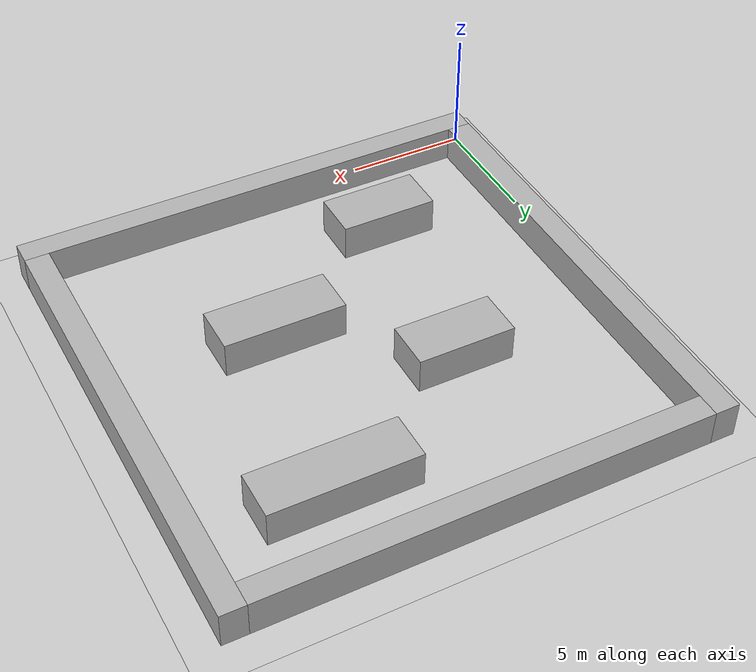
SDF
<?xml version="1.0" ?>
<sdf version="1.9">
  <world name="grid_world">
    <physics type="ode">
      <max_step_size>0.004</max_step_size>
      <real_time_factor>1.0</real_time_factor>
      <real_time_update_rate>250</real_time_update_rate>
    </physics>
    <gravity>0 0 -9.8</gravity>
    <magnetic_field>6e-06 2.3e-05 -4.2e-05</magnetic_field>
    <atmosphere type="adiabatic"/>
    <scene>
      <grid>false</grid>
      <ambient>0.4 0.4 0.4 1</ambient>
      <background>0.7 0.7 0.7 1</background>
      <shadows>true</shadows>
    </scene>
    <spherical_coordinates>
      <surface_model>EARTH_WGS84</surface_model>
      <world_frame_orientation>ENU</world_frame_orientation>
      <latitude_deg>47.397971057728974</latitude_deg>
      <longitude_deg>8.546163739800146</longitude_deg>
      <elevation>0</elevation>
    </spherical_coordinates>

    <!-- 光照 -->
    <light type="directional" name="sun">
      <cast_shadows>true</cast_shadows>
      <pose>0 0 10 0 0 0</pose>
      <diffuse>0.8 0.8 0.8 1</diffuse>
      <specular>0.2 0.2 0.2 1</specular>
      <direction>-0.5 0.1 -0.9</direction>
    </light>

    <!-- 地面 -->
    <model name="ground_plane">
      <static>true</static>
      <link name="link">
        <collision name="collision">
          <geometry>
            <plane><normal>0 0 1</normal><size>22.0 22.0</size></plane>
          </geometry>
        </collision>
        <visual name="visual">
          <geometry>
            <plane><normal>0 0 1</normal><size>22.0 22.0</size></plane>
          </geometry>
          <material>
            <ambient>0.8 0.8 0.8 1</ambient>
            <diffuse>0.8 0.8 0.8 1</diffuse>
          </material>
        </visual>
      </link>
    </model>

    <!-- 障碍物（从 occupancy grid 合并生成） -->
    <model name="wall_0">
      <static>true</static>
      <pose>10.0000 0.5000 0.7500 0 0 0</pose>
      <link name="link">
        <collision name="collision">
          <geometry><box><size>20.0000 1.0000 1.5000</size></box></geometry>
        </collision>
        <visual name="visual">
          <geometry><box><size>20.0000 1.0000 1.5000</size></box></geometry>
          <material><ambient>0.5 0.5 0.5 1</ambient><diffuse>0.7 0.7 0.7 1</diffuse></material>
        </visual>
      </link>
    </model>

    <model name="wall_1">
      <static>true</static>
      <pose>0.5000 10.5000 0.7500 0 0 0</pose>
      <link name="link">
        <collision name="collision">
          <geometry><box><size>1.0000 19.0000 1.5000</size></box></geometry>
        </collision>
        <visual name="visual">
          <geometry><box><size>1.0000 19.0000 1.5000</size></box></geometry>
          <material><ambient>0.5 0.5 0.5 1</ambient><diffuse>0.7 0.7 0.7 1</diffuse></material>
        </visual>
      </link>
    </model>

    <model name="wall_2">
      <static>true</static>
      <pose>19.5000 10.5000 0.7500 0 0 0</pose>
      <link name="link">
        <collision name="collision">
          <geometry><box><size>1.0000 19.0000 1.5000</size></box></geometry>
        </collision>
        <visual name="visual">
          <geometry><box><size>1.0000 19.0000 1.5000</size></box></geometry>
          <material><ambient>0.5 0.5 0.5 1</ambient><diffuse>0.7 0.7 0.7 1</diffuse></material>
        </visual>
      </link>
    </model>

    <model name="wall_3">
      <static>true</static>
      <pose>6.0000 4.0000 0.7500 0 0 0</pose>
      <link name="link">
        <collision name="collision">
          <geometry><box><size>4.0000 2.0000 1.5000</size></box></geometry>
        </collision>
        <visual name="visual">
          <geometry><box><size>4.0000 2.0000 1.5000</size></box></geometry>
          <material><ambient>0.5 0.5 0.5 1</ambient><diffuse>0.7 0.7 0.7 1</diffuse></material>
        </visual>
      </link>
    </model>

    <model name="wall_4">
      <static>true</static>
      <pose>12.5000 8.0000 0.7500 0 0 0</pose>
      <link name="link">
        <collision name="collision">
          <geometry><box><size>5.0000 2.0000 1.5000</size></box></geometry>
        </collision>
        <visual name="visual">
          <geometry><box><size>5.0000 2.0000 1.5000</size></box></geometry>
          <material><ambient>0.5 0.5 0.5 1</ambient><diffuse>0.7 0.7 0.7 1</diffuse></material>
        </visual>
      </link>
    </model>

    <model name="wall_5">
      <static>true</static>
      <pose>7.0000 12.0000 0.7500 0 0 0</pose>
      <link name="link">
        <collision name="collision">
          <geometry><box><size>4.0000 2.0000 1.5000</size></box></geometry>
        </collision>
        <visual name="visual">
          <geometry><box><size>4.0000 2.0000 1.5000</size></box></geometry>
          <material><ambient>0.5 0.5 0.5 1</ambient><diffuse>0.7 0.7 0.7 1</diffuse></material>
        </visual>
      </link>
    </model>

    <model name="wall_6">
      <static>true</static>
      <pose>14.0000 16.0000 0.7500 0 0 0</pose>
      <link name="link">
        <collision name="collision">
          <geometry><box><size>6.0000 2.0000 1.5000</size></box></geometry>
        </collision>
        <visual name="visual">
          <geometry><box><size>6.0000 2.0000 1.5000</size></box></geometry>
          <material><ambient>0.5 0.5 0.5 1</ambient><diffuse>0.7 0.7 0.7 1</diffuse></material>
        </visual>
      </link>
    </model>

    <model name="wall_7">
      <static>true</static>
      <pose>10.0000 19.5000 0.7500 0 0 0</pose>
      <link name="link">
        <collision name="collision">
          <geometry><box><size>18.0000 1.0000 1.5000</size></box></geometry>
        </collision>
        <visual name="visual">
          <geometry><box><size>18.0000 1.0000 1.5000</size></box></geometry>
          <material><ambient>0.5 0.5 0.5 1</ambient><diffuse>0.7 0.7 0.7 1</diffuse></material>
        </visual>
      </link>
    </model>

  </world>
</sdf>
